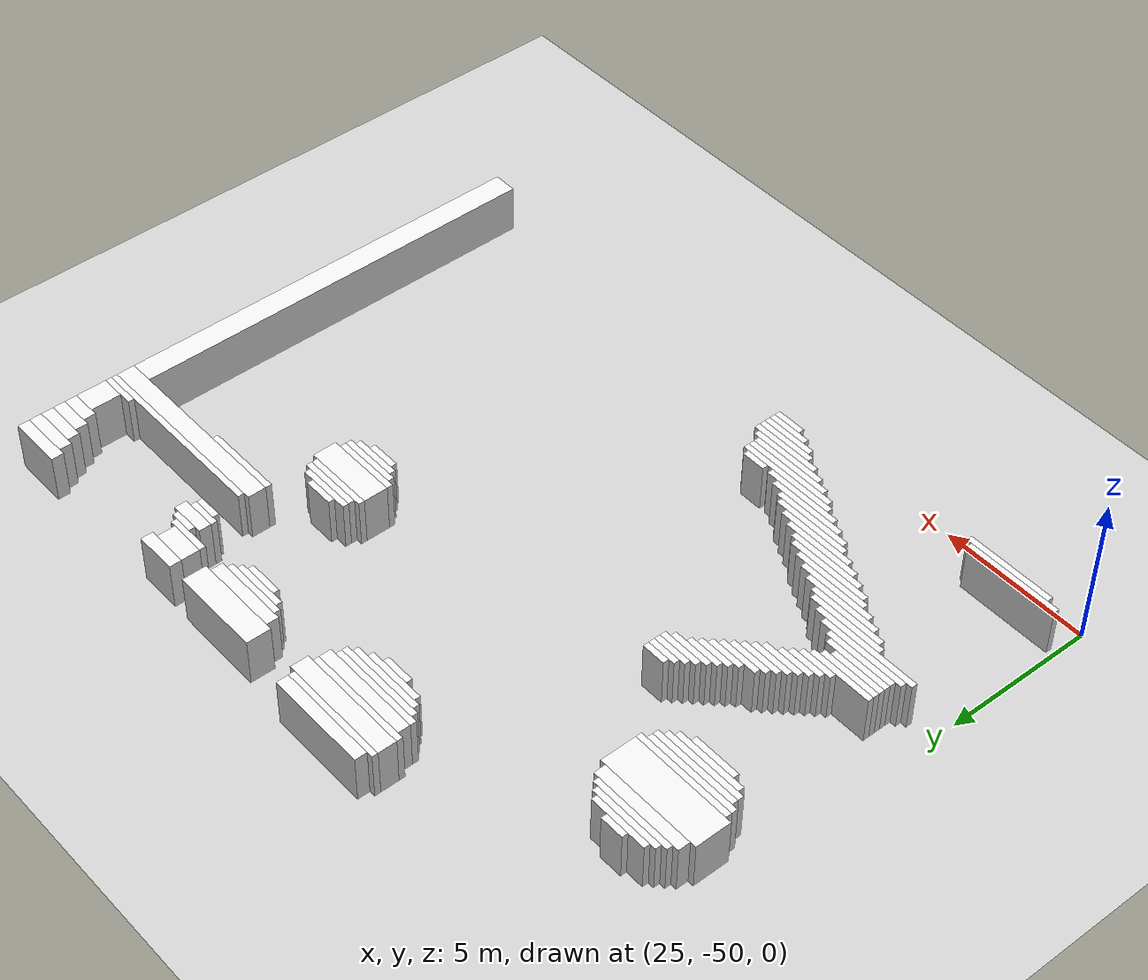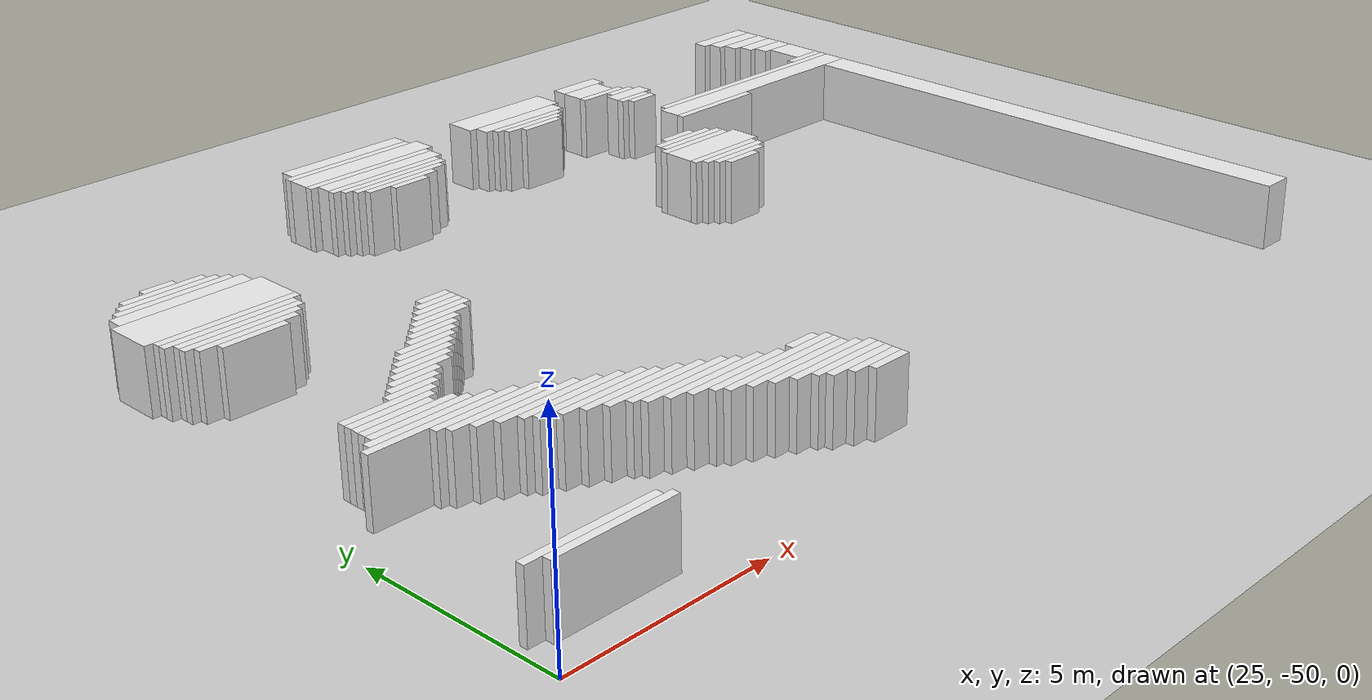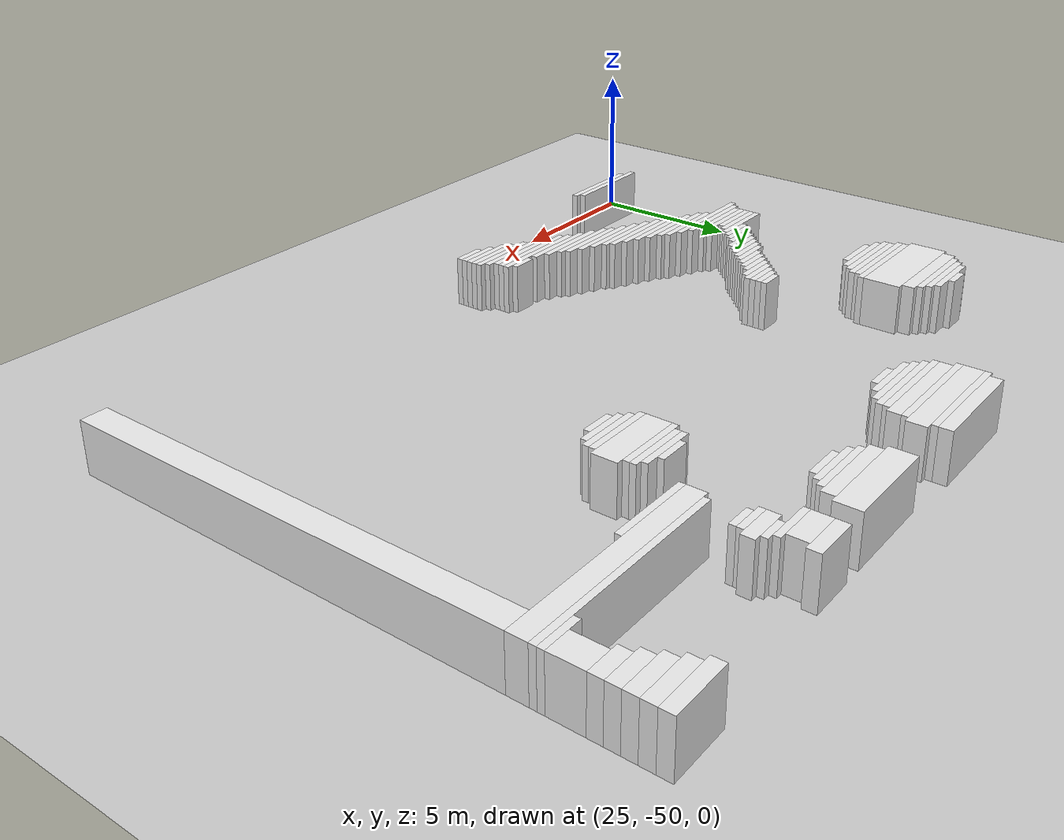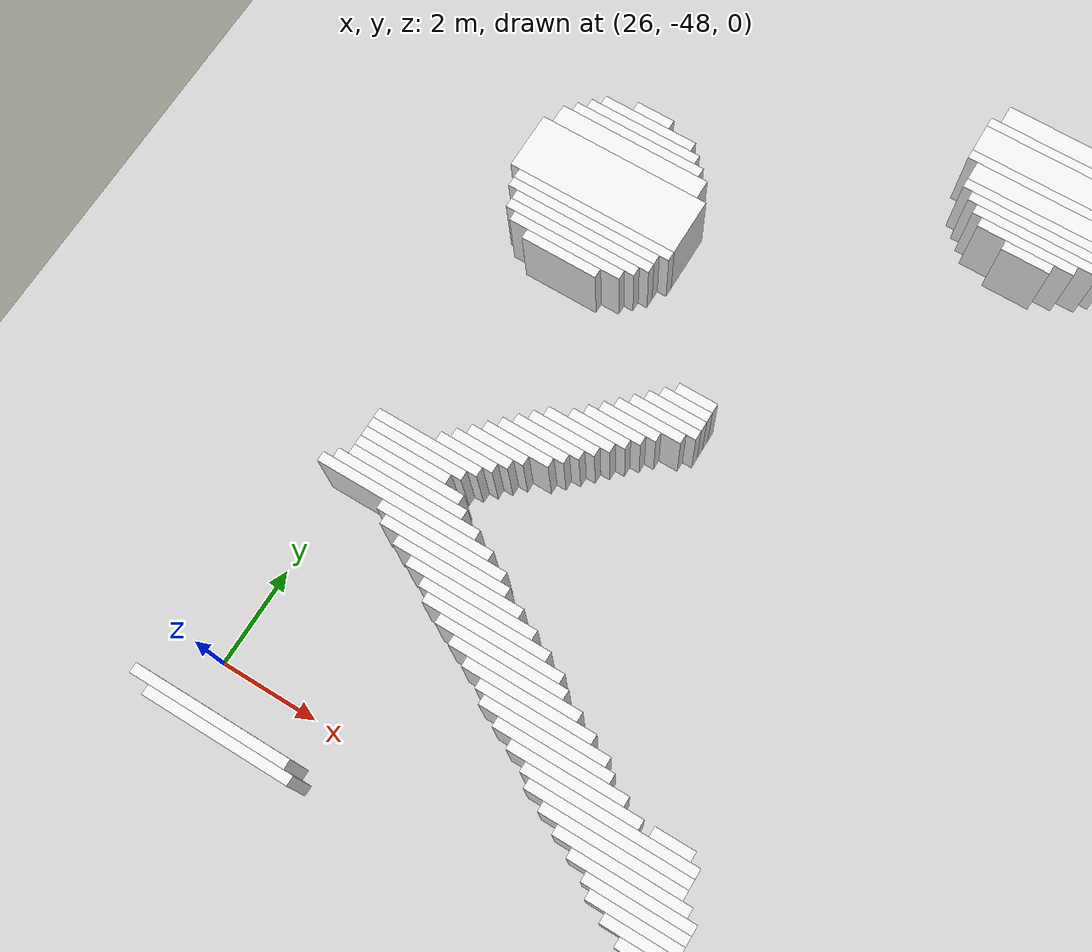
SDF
<sdf version="1.7">
 <world name="default">
  <model name="ground_plane">
   <static>1</static>
   <link name="link">
    <collision name="collision">
     <geometry><plane><normal>0 0 1</normal><size>120 120</size></plane></geometry>
    </collision>
    <visual name="visual">
     <geometry><plane><normal>0 0 1</normal><size>120 120</size></plane></geometry>
     <material>
      <script><uri>file://media/materials/scripts/gazebo.material</uri><name>Gazebo/Grey</name></script>
     </material>
    </visual>
   </link>
  </model>
  <model name="random_complex_03_model">
   <static>1</static>
   <link name="obs_2646">
    <pose>34.9000 -31.6000 0.8000 0 0 0</pose>
    <collision name="obs_2646_col"><geometry><box><size>3.4000 0.4000 1.6000</size></box></geometry></collision>
    <visual name="obs_2646_vis">
     <geometry><box><size>3.4000 0.4000 1.6000</size></box></geometry>
     <material>
      <script><uri>file://media/materials/scripts/gazebo.material</uri><name>Gazebo/White</name></script>
     </material>
    </visual>
   </link>
   <link name="obs_2647">
    <pose>48.3000 -31.6000 0.8000 0 0 0</pose>
    <collision name="obs_2647_col"><geometry><box><size>1.8000 0.4000 1.6000</size></box></geometry></collision>
    <visual name="obs_2647_vis">
     <geometry><box><size>1.8000 0.4000 1.6000</size></box></geometry>
     <material>
      <script><uri>file://media/materials/scripts/gazebo.material</uri><name>Gazebo/White</name></script>
     </material>
    </visual>
   </link>
   <link name="obs_2652">
    <pose>42.5000 -31.8000 0.8000 0 0 0</pose>
    <collision name="obs_2652_col"><geometry><box><size>1.4000 0.4000 1.6000</size></box></geometry></collision>
    <visual name="obs_2652_vis">
     <geometry><box><size>1.4000 0.4000 1.6000</size></box></geometry>
     <material>
      <script><uri>file://media/materials/scripts/gazebo.material</uri><name>Gazebo/White</name></script>
     </material>
    </visual>
   </link>
   <link name="obs_2658">
    <pose>34.8000 -31.9000 0.8000 0 0 0</pose>
    <collision name="obs_2658_col"><geometry><box><size>3.6000 0.2000 1.6000</size></box></geometry></collision>
    <visual name="obs_2658_vis">
     <geometry><box><size>3.6000 0.2000 1.6000</size></box></geometry>
     <material>
      <script><uri>file://media/materials/scripts/gazebo.material</uri><name>Gazebo/White</name></script>
     </material>
    </visual>
   </link>
   <link name="obs_2659">
    <pose>48.4000 -32.0000 0.8000 0 0 0</pose>
    <collision name="obs_2659_col"><geometry><box><size>1.6000 0.4000 1.6000</size></box></geometry></collision>
    <visual name="obs_2659_vis">
     <geometry><box><size>1.6000 0.4000 1.6000</size></box></geometry>
     <material>
      <script><uri>file://media/materials/scripts/gazebo.material</uri><name>Gazebo/White</name></script>
     </material>
    </visual>
   </link>
   <link name="obs_2665">
    <pose>39.7000 -32.0000 0.8000 0 0 0</pose>
    <collision name="obs_2665_col"><geometry><box><size>3.0000 0.8000 1.6000</size></box></geometry></collision>
    <visual name="obs_2665_vis">
     <geometry><box><size>3.0000 0.8000 1.6000</size></box></geometry>
     <material>
      <script><uri>file://media/materials/scripts/gazebo.material</uri><name>Gazebo/White</name></script>
     </material>
    </visual>
   </link>
   <link name="obs_2672">
    <pose>34.9000 -32.3000 0.8000 0 0 0</pose>
    <collision name="obs_2672_col"><geometry><box><size>3.8000 0.6000 1.6000</size></box></geometry></collision>
    <visual name="obs_2672_vis">
     <geometry><box><size>3.8000 0.6000 1.6000</size></box></geometry>
     <material>
      <script><uri>file://media/materials/scripts/gazebo.material</uri><name>Gazebo/White</name></script>
     </material>
    </visual>
   </link>
   <link name="obs_2673">
    <pose>42.4000 -32.3000 0.8000 0 0 0</pose>
    <collision name="obs_2673_col"><geometry><box><size>1.2000 0.6000 1.6000</size></box></geometry></collision>
    <visual name="obs_2673_vis">
     <geometry><box><size>1.2000 0.6000 1.6000</size></box></geometry>
     <material>
      <script><uri>file://media/materials/scripts/gazebo.material</uri><name>Gazebo/White</name></script>
     </material>
    </visual>
   </link>
   <link name="obs_2674">
    <pose>48.5000 -32.4000 0.8000 0 0 0</pose>
    <collision name="obs_2674_col"><geometry><box><size>1.4000 0.4000 1.6000</size></box></geometry></collision>
    <visual name="obs_2674_vis">
     <geometry><box><size>1.4000 0.4000 1.6000</size></box></geometry>
     <material>
      <script><uri>file://media/materials/scripts/gazebo.material</uri><name>Gazebo/White</name></script>
     </material>
    </visual>
   </link>
   <link name="obs_2681">
    <pose>39.7000 -32.6000 0.8000 0 0 0</pose>
    <collision name="obs_2681_col"><geometry><box><size>2.6000 0.4000 1.6000</size></box></geometry></collision>
    <visual name="obs_2681_vis">
     <geometry><box><size>2.6000 0.4000 1.6000</size></box></geometry>
     <material>
      <script><uri>file://media/materials/scripts/gazebo.material</uri><name>Gazebo/White</name></script>
     </material>
    </visual>
   </link>
   <link name="obs_2687">
    <pose>34.8000 -32.7000 0.8000 0 0 0</pose>
    <collision name="obs_2687_col"><geometry><box><size>3.6000 0.2000 1.6000</size></box></geometry></collision>
    <visual name="obs_2687_vis">
     <geometry><box><size>3.6000 0.2000 1.6000</size></box></geometry>
     <material>
      <script><uri>file://media/materials/scripts/gazebo.material</uri><name>Gazebo/White</name></script>
     </material>
    </visual>
   </link>
   <link name="obs_2688">
    <pose>42.5000 -32.7000 0.8000 0 0 0</pose>
    <collision name="obs_2688_col"><geometry><box><size>1.4000 0.2000 1.6000</size></box></geometry></collision>
    <visual name="obs_2688_vis">
     <geometry><box><size>1.4000 0.2000 1.6000</size></box></geometry>
     <material>
      <script><uri>file://media/materials/scripts/gazebo.material</uri><name>Gazebo/White</name></script>
     </material>
    </visual>
   </link>
   <link name="obs_2691">
    <pose>48.6000 -32.8000 0.8000 0 0 0</pose>
    <collision name="obs_2691_col"><geometry><box><size>1.2000 0.4000 1.6000</size></box></geometry></collision>
    <visual name="obs_2691_vis">
     <geometry><box><size>1.2000 0.4000 1.6000</size></box></geometry>
     <material>
      <script><uri>file://media/materials/scripts/gazebo.material</uri><name>Gazebo/White</name></script>
     </material>
    </visual>
   </link>
   <link name="obs_2696">
    <pose>39.7000 -32.9000 0.8000 0 0 0</pose>
    <collision name="obs_2696_col"><geometry><box><size>2.2000 0.2000 1.6000</size></box></geometry></collision>
    <visual name="obs_2696_vis">
     <geometry><box><size>2.2000 0.2000 1.6000</size></box></geometry>
     <material>
      <script><uri>file://media/materials/scripts/gazebo.material</uri><name>Gazebo/White</name></script>
     </material>
    </visual>
   </link>
   <link name="obs_2697">
    <pose>43.0000 -32.9000 0.8000 0 0 0</pose>
    <collision name="obs_2697_col"><geometry><box><size>0.8000 0.2000 1.6000</size></box></geometry></collision>
    <visual name="obs_2697_vis">
     <geometry><box><size>0.8000 0.2000 1.6000</size></box></geometry>
     <material>
      <script><uri>file://media/materials/scripts/gazebo.material</uri><name>Gazebo/White</name></script>
     </material>
    </visual>
   </link>
   <link name="obs_2699">
    <pose>34.9000 -33.0000 0.8000 0 0 0</pose>
    <collision name="obs_2699_col"><geometry><box><size>3.4000 0.4000 1.6000</size></box></geometry></collision>
    <visual name="obs_2699_vis">
     <geometry><box><size>3.4000 0.4000 1.6000</size></box></geometry>
     <material>
      <script><uri>file://media/materials/scripts/gazebo.material</uri><name>Gazebo/White</name></script>
     </material>
    </visual>
   </link>
   <link name="obs_2703">
    <pose>39.7000 -33.1000 0.8000 0 0 0</pose>
    <collision name="obs_2703_col"><geometry><box><size>1.8000 0.2000 1.6000</size></box></geometry></collision>
    <visual name="obs_2703_vis">
     <geometry><box><size>1.8000 0.2000 1.6000</size></box></geometry>
     <material>
      <script><uri>file://media/materials/scripts/gazebo.material</uri><name>Gazebo/White</name></script>
     </material>
    </visual>
   </link>
   <link name="obs_2705">
    <pose>43.0000 -33.2000 0.8000 0 0 0</pose>
    <collision name="obs_2705_col"><geometry><box><size>1.2000 0.4000 1.6000</size></box></geometry></collision>
    <visual name="obs_2705_vis">
     <geometry><box><size>1.2000 0.4000 1.6000</size></box></geometry>
     <material>
      <script><uri>file://media/materials/scripts/gazebo.material</uri><name>Gazebo/White</name></script>
     </material>
    </visual>
   </link>
   <link name="obs_2706">
    <pose>48.7000 -33.2000 0.8000 0 0 0</pose>
    <collision name="obs_2706_col"><geometry><box><size>1.0000 0.4000 1.6000</size></box></geometry></collision>
    <visual name="obs_2706_vis">
     <geometry><box><size>1.0000 0.4000 1.6000</size></box></geometry>
     <material>
      <script><uri>file://media/materials/scripts/gazebo.material</uri><name>Gazebo/White</name></script>
     </material>
    </visual>
   </link>
   <link name="obs_2710">
    <pose>34.8000 -33.3000 0.8000 0 0 0</pose>
    <collision name="obs_2710_col"><geometry><box><size>3.2000 0.2000 1.6000</size></box></geometry></collision>
    <visual name="obs_2710_vis">
     <geometry><box><size>3.2000 0.2000 1.6000</size></box></geometry>
     <material>
      <script><uri>file://media/materials/scripts/gazebo.material</uri><name>Gazebo/White</name></script>
     </material>
    </visual>
   </link>
   <link name="obs_2711">
    <pose>39.8000 -33.3000 0.8000 0 0 0</pose>
    <collision name="obs_2711_col"><geometry><box><size>1.2000 0.2000 1.6000</size></box></geometry></collision>
    <visual name="obs_2711_vis">
     <geometry><box><size>1.2000 0.2000 1.6000</size></box></geometry>
     <material>
      <script><uri>file://media/materials/scripts/gazebo.material</uri><name>Gazebo/White</name></script>
     </material>
    </visual>
   </link>
   <link name="obs_2716">
    <pose>34.9000 -33.5000 0.8000 0 0 0</pose>
    <collision name="obs_2716_col"><geometry><box><size>3.0000 0.2000 1.6000</size></box></geometry></collision>
    <visual name="obs_2716_vis">
     <geometry><box><size>3.0000 0.2000 1.6000</size></box></geometry>
     <material>
      <script><uri>file://media/materials/scripts/gazebo.material</uri><name>Gazebo/White</name></script>
     </material>
    </visual>
   </link>
   <link name="obs_2717">
    <pose>42.9000 -33.5000 0.8000 0 0 0</pose>
    <collision name="obs_2717_col"><geometry><box><size>1.0000 0.2000 1.6000</size></box></geometry></collision>
    <visual name="obs_2717_vis">
     <geometry><box><size>1.0000 0.2000 1.6000</size></box></geometry>
     <material>
      <script><uri>file://media/materials/scripts/gazebo.material</uri><name>Gazebo/White</name></script>
     </material>
    </visual>
   </link>
   <link name="obs_2724">
    <pose>34.9000 -33.7000 0.8000 0 0 0</pose>
    <collision name="obs_2724_col"><geometry><box><size>2.6000 0.2000 1.6000</size></box></geometry></collision>
    <visual name="obs_2724_vis">
     <geometry><box><size>2.6000 0.2000 1.6000</size></box></geometry>
     <material>
      <script><uri>file://media/materials/scripts/gazebo.material</uri><name>Gazebo/White</name></script>
     </material>
    </visual>
   </link>
   <link name="obs_2725">
    <pose>43.0000 -33.7000 0.8000 0 0 0</pose>
    <collision name="obs_2725_col"><geometry><box><size>0.8000 0.2000 1.6000</size></box></geometry></collision>
    <visual name="obs_2725_vis">
     <geometry><box><size>0.8000 0.2000 1.6000</size></box></geometry>
     <material>
      <script><uri>file://media/materials/scripts/gazebo.material</uri><name>Gazebo/White</name></script>
     </material>
    </visual>
   </link>
   <link name="obs_2731">
    <pose>34.8000 -33.9000 0.8000 0 0 0</pose>
    <collision name="obs_2731_col"><geometry><box><size>2.0000 0.2000 1.6000</size></box></geometry></collision>
    <visual name="obs_2731_vis">
     <geometry><box><size>2.0000 0.2000 1.6000</size></box></geometry>
     <material>
      <script><uri>file://media/materials/scripts/gazebo.material</uri><name>Gazebo/White</name></script>
     </material>
    </visual>
   </link>
   <link name="obs_2738">
    <pose>34.9000 -34.1000 0.8000 0 0 0</pose>
    <collision name="obs_2738_col"><geometry><box><size>1.0000 0.2000 1.6000</size></box></geometry></collision>
    <visual name="obs_2738_vis">
     <geometry><box><size>1.0000 0.2000 1.6000</size></box></geometry>
     <material>
      <script><uri>file://media/materials/scripts/gazebo.material</uri><name>Gazebo/White</name></script>
     </material>
    </visual>
   </link>
   <link name="obs_2739">
    <pose>48.8000 -33.9000 0.8000 0 0 0</pose>
    <collision name="obs_2739_col"><geometry><box><size>0.8000 1.0000 1.6000</size></box></geometry></collision>
    <visual name="obs_2739_vis">
     <geometry><box><size>0.8000 1.0000 1.6000</size></box></geometry>
     <material>
      <script><uri>file://media/materials/scripts/gazebo.material</uri><name>Gazebo/White</name></script>
     </material>
    </visual>
   </link>
   <link name="obs_2754">
    <pose>48.6000 -34.5000 0.8000 0 0 0</pose>
    <collision name="obs_2754_col"><geometry><box><size>1.2000 0.2000 1.6000</size></box></geometry></collision>
    <visual name="obs_2754_vis">
     <geometry><box><size>1.2000 0.2000 1.6000</size></box></geometry>
     <material>
      <script><uri>file://media/materials/scripts/gazebo.material</uri><name>Gazebo/White</name></script>
     </material>
    </visual>
   </link>
   <link name="obs_2763">
    <pose>46.0000 -34.7000 0.8000 0 0 0</pose>
    <collision name="obs_2763_col"><geometry><box><size>6.4000 0.2000 1.6000</size></box></geometry></collision>
    <visual name="obs_2763_vis">
     <geometry><box><size>6.4000 0.2000 1.6000</size></box></geometry>
     <material>
      <script><uri>file://media/materials/scripts/gazebo.material</uri><name>Gazebo/White</name></script>
     </material>
    </visual>
   </link>
   <link name="obs_2776">
    <pose>27.4000 -35.1000 0.8000 0 0 0</pose>
    <collision name="obs_2776_col"><geometry><box><size>0.8000 0.2000 1.6000</size></box></geometry></collision>
    <visual name="obs_2776_vis">
     <geometry><box><size>0.8000 0.2000 1.6000</size></box></geometry>
     <material>
      <script><uri>file://media/materials/scripts/gazebo.material</uri><name>Gazebo/White</name></script>
     </material>
    </visual>
   </link>
   <link name="obs_2779">
    <pose>45.9000 -35.1000 0.8000 0 0 0</pose>
    <collision name="obs_2779_col"><geometry><box><size>6.6000 0.6000 1.6000</size></box></geometry></collision>
    <visual name="obs_2779_vis">
     <geometry><box><size>6.6000 0.6000 1.6000</size></box></geometry>
     <material>
      <script><uri>file://media/materials/scripts/gazebo.material</uri><name>Gazebo/White</name></script>
     </material>
    </visual>
   </link>
   <link name="obs_2785">
    <pose>27.4000 -35.3000 0.8000 0 0 0</pose>
    <collision name="obs_2785_col"><geometry><box><size>2.0000 0.2000 1.6000</size></box></geometry></collision>
    <visual name="obs_2785_vis">
     <geometry><box><size>2.0000 0.2000 1.6000</size></box></geometry>
     <material>
      <script><uri>file://media/materials/scripts/gazebo.material</uri><name>Gazebo/White</name></script>
     </material>
    </visual>
   </link>
   <link name="obs_2791">
    <pose>27.4000 -35.5000 0.8000 0 0 0</pose>
    <collision name="obs_2791_col"><geometry><box><size>2.4000 0.2000 1.6000</size></box></geometry></collision>
    <visual name="obs_2791_vis">
     <geometry><box><size>2.4000 0.2000 1.6000</size></box></geometry>
     <material>
      <script><uri>file://media/materials/scripts/gazebo.material</uri><name>Gazebo/White</name></script>
     </material>
    </visual>
   </link>
   <link name="obs_2792">
    <pose>43.9000 -35.5000 0.8000 0 0 0</pose>
    <collision name="obs_2792_col"><geometry><box><size>2.6000 0.2000 1.6000</size></box></geometry></collision>
    <visual name="obs_2792_vis">
     <geometry><box><size>2.6000 0.2000 1.6000</size></box></geometry>
     <material>
      <script><uri>file://media/materials/scripts/gazebo.material</uri><name>Gazebo/White</name></script>
     </material>
    </visual>
   </link>
   <link name="obs_2800">
    <pose>27.4000 -35.7000 0.8000 0 0 0</pose>
    <collision name="obs_2800_col"><geometry><box><size>2.8000 0.2000 1.6000</size></box></geometry></collision>
    <visual name="obs_2800_vis">
     <geometry><box><size>2.8000 0.2000 1.6000</size></box></geometry>
     <material>
      <script><uri>file://media/materials/scripts/gazebo.material</uri><name>Gazebo/White</name></script>
     </material>
    </visual>
   </link>
   <link name="obs_2809">
    <pose>27.4000 -36.0000 0.8000 0 0 0</pose>
    <collision name="obs_2809_col"><geometry><box><size>3.2000 0.4000 1.6000</size></box></geometry></collision>
    <visual name="obs_2809_vis">
     <geometry><box><size>3.2000 0.4000 1.6000</size></box></geometry>
     <material>
      <script><uri>file://media/materials/scripts/gazebo.material</uri><name>Gazebo/White</name></script>
     </material>
    </visual>
   </link>
   <link name="obs_2829">
    <pose>41.5000 -36.5000 0.8000 0 0 0</pose>
    <collision name="obs_2829_col"><geometry><box><size>1.0000 0.2000 1.6000</size></box></geometry></collision>
    <visual name="obs_2829_vis">
     <geometry><box><size>1.0000 0.2000 1.6000</size></box></geometry>
     <material>
      <script><uri>file://media/materials/scripts/gazebo.material</uri><name>Gazebo/White</name></script>
     </material>
    </visual>
   </link>
   <link name="obs_2836">
    <pose>41.5000 -36.7000 0.8000 0 0 0</pose>
    <collision name="obs_2836_col"><geometry><box><size>1.8000 0.2000 1.6000</size></box></geometry></collision>
    <visual name="obs_2836_vis">
     <geometry><box><size>1.8000 0.2000 1.6000</size></box></geometry>
     <material>
      <script><uri>file://media/materials/scripts/gazebo.material</uri><name>Gazebo/White</name></script>
     </material>
    </visual>
   </link>
   <link name="obs_2841">
    <pose>41.6000 -36.9000 0.8000 0 0 0</pose>
    <collision name="obs_2841_col"><geometry><box><size>2.0000 0.2000 1.6000</size></box></geometry></collision>
    <visual name="obs_2841_vis">
     <geometry><box><size>2.0000 0.2000 1.6000</size></box></geometry>
     <material>
      <script><uri>file://media/materials/scripts/gazebo.material</uri><name>Gazebo/White</name></script>
     </material>
    </visual>
   </link>
   <link name="obs_2846">
    <pose>41.5000 -37.1000 0.8000 0 0 0</pose>
    <collision name="obs_2846_col"><geometry><box><size>2.2000 0.2000 1.6000</size></box></geometry></collision>
    <visual name="obs_2846_vis">
     <geometry><box><size>2.2000 0.2000 1.6000</size></box></geometry>
     <material>
      <script><uri>file://media/materials/scripts/gazebo.material</uri><name>Gazebo/White</name></script>
     </material>
    </visual>
   </link>
   <link name="obs_2847">
    <pose>27.4000 -36.8000 0.8000 0 0 0</pose>
    <collision name="obs_2847_col"><geometry><box><size>3.6000 1.2000 1.6000</size></box></geometry></collision>
    <visual name="obs_2847_vis">
     <geometry><box><size>3.6000 1.2000 1.6000</size></box></geometry>
     <material>
      <script><uri>file://media/materials/scripts/gazebo.material</uri><name>Gazebo/White</name></script>
     </material>
    </visual>
   </link>
   <link name="obs_2858">
    <pose>27.5000 -37.5000 0.8000 0 0 0</pose>
    <collision name="obs_2858_col"><geometry><box><size>3.4000 0.2000 1.6000</size></box></geometry></collision>
    <visual name="obs_2858_vis">
     <geometry><box><size>3.4000 0.2000 1.6000</size></box></geometry>
     <material>
      <script><uri>file://media/materials/scripts/gazebo.material</uri><name>Gazebo/White</name></script>
     </material>
    </visual>
   </link>
   <link name="obs_2864">
    <pose>27.4000 -37.7000 0.8000 0 0 0</pose>
    <collision name="obs_2864_col"><geometry><box><size>3.2000 0.2000 1.6000</size></box></geometry></collision>
    <visual name="obs_2864_vis">
     <geometry><box><size>3.2000 0.2000 1.6000</size></box></geometry>
     <material>
      <script><uri>file://media/materials/scripts/gazebo.material</uri><name>Gazebo/White</name></script>
     </material>
    </visual>
   </link>
   <link name="obs_2865">
    <pose>41.6000 -37.6000 0.8000 0 0 0</pose>
    <collision name="obs_2865_col"><geometry><box><size>2.4000 0.8000 1.6000</size></box></geometry></collision>
    <visual name="obs_2865_vis">
     <geometry><box><size>2.4000 0.8000 1.6000</size></box></geometry>
     <material>
      <script><uri>file://media/materials/scripts/gazebo.material</uri><name>Gazebo/White</name></script>
     </material>
    </visual>
   </link>
   <link name="obs_2869">
    <pose>27.5000 -37.9000 0.8000 0 0 0</pose>
    <collision name="obs_2869_col"><geometry><box><size>3.0000 0.2000 1.6000</size></box></geometry></collision>
    <visual name="obs_2869_vis">
     <geometry><box><size>3.0000 0.2000 1.6000</size></box></geometry>
     <material>
      <script><uri>file://media/materials/scripts/gazebo.material</uri><name>Gazebo/White</name></script>
     </material>
    </visual>
   </link>
   <link name="obs_2875">
    <pose>27.4000 -38.1000 0.8000 0 0 0</pose>
    <collision name="obs_2875_col"><geometry><box><size>2.8000 0.2000 1.6000</size></box></geometry></collision>
    <visual name="obs_2875_vis">
     <geometry><box><size>2.8000 0.2000 1.6000</size></box></geometry>
     <material>
      <script><uri>file://media/materials/scripts/gazebo.material</uri><name>Gazebo/White</name></script>
     </material>
    </visual>
   </link>
   <link name="obs_2876">
    <pose>41.5000 -38.1000 0.8000 0 0 0</pose>
    <collision name="obs_2876_col"><geometry><box><size>2.2000 0.2000 1.6000</size></box></geometry></collision>
    <visual name="obs_2876_vis">
     <geometry><box><size>2.2000 0.2000 1.6000</size></box></geometry>
     <material>
      <script><uri>file://media/materials/scripts/gazebo.material</uri><name>Gazebo/White</name></script>
     </material>
    </visual>
   </link>
   <link name="obs_2882">
    <pose>27.4000 -38.3000 0.8000 0 0 0</pose>
    <collision name="obs_2882_col"><geometry><box><size>2.4000 0.2000 1.6000</size></box></geometry></collision>
    <visual name="obs_2882_vis">
     <geometry><box><size>2.4000 0.2000 1.6000</size></box></geometry>
     <material>
      <script><uri>file://media/materials/scripts/gazebo.material</uri><name>Gazebo/White</name></script>
     </material>
    </visual>
   </link>
   <link name="obs_2883">
    <pose>41.6000 -38.3000 0.8000 0 0 0</pose>
    <collision name="obs_2883_col"><geometry><box><size>2.0000 0.2000 1.6000</size></box></geometry></collision>
    <visual name="obs_2883_vis">
     <geometry><box><size>2.0000 0.2000 1.6000</size></box></geometry>
     <material>
      <script><uri>file://media/materials/scripts/gazebo.material</uri><name>Gazebo/White</name></script>
     </material>
    </visual>
   </link>
   <link name="obs_2888">
    <pose>27.4000 -38.5000 0.8000 0 0 0</pose>
    <collision name="obs_2888_col"><geometry><box><size>1.6000 0.2000 1.6000</size></box></geometry></collision>
    <visual name="obs_2888_vis">
     <geometry><box><size>1.6000 0.2000 1.6000</size></box></geometry>
     <material>
      <script><uri>file://media/materials/scripts/gazebo.material</uri><name>Gazebo/White</name></script>
     </material>
    </visual>
   </link>
   <link name="obs_2889">
    <pose>41.6000 -38.5000 0.8000 0 0 0</pose>
    <collision name="obs_2889_col"><geometry><box><size>1.6000 0.2000 1.6000</size></box></geometry></collision>
    <visual name="obs_2889_vis">
     <geometry><box><size>1.6000 0.2000 1.6000</size></box></geometry>
     <material>
      <script><uri>file://media/materials/scripts/gazebo.material</uri><name>Gazebo/White</name></script>
     </material>
    </visual>
   </link>
   <link name="obs_2894">
    <pose>41.5000 -38.7000 0.8000 0 0 0</pose>
    <collision name="obs_2894_col"><geometry><box><size>1.0000 0.2000 1.6000</size></box></geometry></collision>
    <visual name="obs_2894_vis">
     <geometry><box><size>1.0000 0.2000 1.6000</size></box></geometry>
     <material>
      <script><uri>file://media/materials/scripts/gazebo.material</uri><name>Gazebo/White</name></script>
     </material>
    </visual>
   </link>
   <link name="obs_2918">
    <pose>31.0000 -39.7000 0.8000 0 0 0</pose>
    <collision name="obs_2918_col"><geometry><box><size>0.8000 0.2000 1.6000</size></box></geometry></collision>
    <visual name="obs_2918_vis">
     <geometry><box><size>0.8000 0.2000 1.6000</size></box></geometry>
     <material>
      <script><uri>file://media/materials/scripts/gazebo.material</uri><name>Gazebo/White</name></script>
     </material>
    </visual>
   </link>
   <link name="obs_2924">
    <pose>30.9000 -39.9000 0.8000 0 0 0</pose>
    <collision name="obs_2924_col"><geometry><box><size>1.0000 0.2000 1.6000</size></box></geometry></collision>
    <visual name="obs_2924_vis">
     <geometry><box><size>1.0000 0.2000 1.6000</size></box></geometry>
     <material>
      <script><uri>file://media/materials/scripts/gazebo.material</uri><name>Gazebo/White</name></script>
     </material>
    </visual>
   </link>
   <link name="obs_2930">
    <pose>30.8000 -40.1000 0.8000 0 0 0</pose>
    <collision name="obs_2930_col"><geometry><box><size>1.2000 0.2000 1.6000</size></box></geometry></collision>
    <visual name="obs_2930_vis">
     <geometry><box><size>1.2000 0.2000 1.6000</size></box></geometry>
     <material>
      <script><uri>file://media/materials/scripts/gazebo.material</uri><name>Gazebo/White</name></script>
     </material>
    </visual>
   </link>
   <link name="obs_2937">
    <pose>30.7000 -40.3000 0.8000 0 0 0</pose>
    <collision name="obs_2937_col"><geometry><box><size>1.4000 0.2000 1.6000</size></box></geometry></collision>
    <visual name="obs_2937_vis">
     <geometry><box><size>1.4000 0.2000 1.6000</size></box></geometry>
     <material>
      <script><uri>file://media/materials/scripts/gazebo.material</uri><name>Gazebo/White</name></script>
     </material>
    </visual>
   </link>
   <link name="obs_2942">
    <pose>30.5000 -40.5000 0.8000 0 0 0</pose>
    <collision name="obs_2942_col"><geometry><box><size>1.4000 0.2000 1.6000</size></box></geometry></collision>
    <visual name="obs_2942_vis">
     <geometry><box><size>1.4000 0.2000 1.6000</size></box></geometry>
     <material>
      <script><uri>file://media/materials/scripts/gazebo.material</uri><name>Gazebo/White</name></script>
     </material>
    </visual>
   </link>
   <link name="obs_2948">
    <pose>30.2000 -40.7000 0.8000 0 0 0</pose>
    <collision name="obs_2948_col"><geometry><box><size>1.2000 0.2000 1.6000</size></box></geometry></collision>
    <visual name="obs_2948_vis">
     <geometry><box><size>1.2000 0.2000 1.6000</size></box></geometry>
     <material>
      <script><uri>file://media/materials/scripts/gazebo.material</uri><name>Gazebo/White</name></script>
     </material>
    </visual>
   </link>
   <link name="obs_2954">
    <pose>30.0000 -40.9000 0.8000 0 0 0</pose>
    <collision name="obs_2954_col"><geometry><box><size>1.2000 0.2000 1.6000</size></box></geometry></collision>
    <visual name="obs_2954_vis">
     <geometry><box><size>1.2000 0.2000 1.6000</size></box></geometry>
     <material>
      <script><uri>file://media/materials/scripts/gazebo.material</uri><name>Gazebo/White</name></script>
     </material>
    </visual>
   </link>
   <link name="obs_2958">
    <pose>29.8000 -41.1000 0.8000 0 0 0</pose>
    <collision name="obs_2958_col"><geometry><box><size>1.2000 0.2000 1.6000</size></box></geometry></collision>
    <visual name="obs_2958_vis">
     <geometry><box><size>1.2000 0.2000 1.6000</size></box></geometry>
     <material>
      <script><uri>file://media/materials/scripts/gazebo.material</uri><name>Gazebo/White</name></script>
     </material>
    </visual>
   </link>
   <link name="obs_2962">
    <pose>29.5000 -41.3000 0.8000 0 0 0</pose>
    <collision name="obs_2962_col"><geometry><box><size>1.4000 0.2000 1.6000</size></box></geometry></collision>
    <visual name="obs_2962_vis">
     <geometry><box><size>1.4000 0.2000 1.6000</size></box></geometry>
     <material>
      <script><uri>file://media/materials/scripts/gazebo.material</uri><name>Gazebo/White</name></script>
     </material>
    </visual>
   </link>
   <link name="obs_2965">
    <pose>29.3000 -41.5000 0.8000 0 0 0</pose>
    <collision name="obs_2965_col"><geometry><box><size>1.4000 0.2000 1.6000</size></box></geometry></collision>
    <visual name="obs_2965_vis">
     <geometry><box><size>1.4000 0.2000 1.6000</size></box></geometry>
     <material>
      <script><uri>file://media/materials/scripts/gazebo.material</uri><name>Gazebo/White</name></script>
     </material>
    </visual>
   </link>
   <link name="obs_2968">
    <pose>29.1000 -41.7000 0.8000 0 0 0</pose>
    <collision name="obs_2968_col"><geometry><box><size>1.4000 0.2000 1.6000</size></box></geometry></collision>
    <visual name="obs_2968_vis">
     <geometry><box><size>1.4000 0.2000 1.6000</size></box></geometry>
     <material>
      <script><uri>file://media/materials/scripts/gazebo.material</uri><name>Gazebo/White</name></script>
     </material>
    </visual>
   </link>
   <link name="obs_2971">
    <pose>28.9000 -41.9000 0.8000 0 0 0</pose>
    <collision name="obs_2971_col"><geometry><box><size>1.4000 0.2000 1.6000</size></box></geometry></collision>
    <visual name="obs_2971_vis">
     <geometry><box><size>1.4000 0.2000 1.6000</size></box></geometry>
     <material>
      <script><uri>file://media/materials/scripts/gazebo.material</uri><name>Gazebo/White</name></script>
     </material>
    </visual>
   </link>
   <link name="obs_2976">
    <pose>28.7000 -42.1000 0.8000 0 0 0</pose>
    <collision name="obs_2976_col"><geometry><box><size>1.4000 0.2000 1.6000</size></box></geometry></collision>
    <visual name="obs_2976_vis">
     <geometry><box><size>1.4000 0.2000 1.6000</size></box></geometry>
     <material>
      <script><uri>file://media/materials/scripts/gazebo.material</uri><name>Gazebo/White</name></script>
     </material>
    </visual>
   </link>
   <link name="obs_2981">
    <pose>28.4000 -42.3000 0.8000 0 0 0</pose>
    <collision name="obs_2981_col"><geometry><box><size>1.2000 0.2000 1.6000</size></box></geometry></collision>
    <visual name="obs_2981_vis">
     <geometry><box><size>1.2000 0.2000 1.6000</size></box></geometry>
     <material>
      <script><uri>file://media/materials/scripts/gazebo.material</uri><name>Gazebo/White</name></script>
     </material>
    </visual>
   </link>
   <link name="obs_2986">
    <pose>28.2000 -42.5000 0.8000 0 0 0</pose>
    <collision name="obs_2986_col"><geometry><box><size>1.2000 0.2000 1.6000</size></box></geometry></collision>
    <visual name="obs_2986_vis">
     <geometry><box><size>1.2000 0.2000 1.6000</size></box></geometry>
     <material>
      <script><uri>file://media/materials/scripts/gazebo.material</uri><name>Gazebo/White</name></script>
     </material>
    </visual>
   </link>
   <link name="obs_2992">
    <pose>28.0000 -42.7000 0.8000 0 0 0</pose>
    <collision name="obs_2992_col"><geometry><box><size>1.2000 0.2000 1.6000</size></box></geometry></collision>
    <visual name="obs_2992_vis">
     <geometry><box><size>1.2000 0.2000 1.6000</size></box></geometry>
     <material>
      <script><uri>file://media/materials/scripts/gazebo.material</uri><name>Gazebo/White</name></script>
     </material>
    </visual>
   </link>
   <link name="obs_2998">
    <pose>27.3000 -42.9000 0.8000 0 0 0</pose>
    <collision name="obs_2998_col"><geometry><box><size>2.2000 0.2000 1.6000</size></box></geometry></collision>
    <visual name="obs_2998_vis">
     <geometry><box><size>2.2000 0.2000 1.6000</size></box></geometry>
     <material>
      <script><uri>file://media/materials/scripts/gazebo.material</uri><name>Gazebo/White</name></script>
     </material>
    </visual>
   </link>
   <link name="obs_3003">
    <pose>27.2000 -43.1000 0.8000 0 0 0</pose>
    <collision name="obs_3003_col"><geometry><box><size>2.0000 0.2000 1.6000</size></box></geometry></collision>
    <visual name="obs_3003_vis">
     <geometry><box><size>2.0000 0.2000 1.6000</size></box></geometry>
     <material>
      <script><uri>file://media/materials/scripts/gazebo.material</uri><name>Gazebo/White</name></script>
     </material>
    </visual>
   </link>
   <link name="obs_3007">
    <pose>27.1000 -43.3000 0.8000 0 0 0</pose>
    <collision name="obs_3007_col"><geometry><box><size>1.8000 0.2000 1.6000</size></box></geometry></collision>
    <visual name="obs_3007_vis">
     <geometry><box><size>1.8000 0.2000 1.6000</size></box></geometry>
     <material>
      <script><uri>file://media/materials/scripts/gazebo.material</uri><name>Gazebo/White</name></script>
     </material>
    </visual>
   </link>
   <link name="obs_3011">
    <pose>27.3000 -43.5000 0.8000 0 0 0</pose>
    <collision name="obs_3011_col"><geometry><box><size>2.2000 0.2000 1.6000</size></box></geometry></collision>
    <visual name="obs_3011_vis">
     <geometry><box><size>2.2000 0.2000 1.6000</size></box></geometry>
     <material>
      <script><uri>file://media/materials/scripts/gazebo.material</uri><name>Gazebo/White</name></script>
     </material>
    </visual>
   </link>
   <link name="obs_3017">
    <pose>27.4000 -43.7000 0.8000 0 0 0</pose>
    <collision name="obs_3017_col"><geometry><box><size>2.4000 0.2000 1.6000</size></box></geometry></collision>
    <visual name="obs_3017_vis">
     <geometry><box><size>2.4000 0.2000 1.6000</size></box></geometry>
     <material>
      <script><uri>file://media/materials/scripts/gazebo.material</uri><name>Gazebo/White</name></script>
     </material>
    </visual>
   </link>
   <link name="obs_3022">
    <pose>27.5000 -43.9000 0.8000 0 0 0</pose>
    <collision name="obs_3022_col"><geometry><box><size>3.0000 0.2000 1.6000</size></box></geometry></collision>
    <visual name="obs_3022_vis">
     <geometry><box><size>3.0000 0.2000 1.6000</size></box></geometry>
     <material>
      <script><uri>file://media/materials/scripts/gazebo.material</uri><name>Gazebo/White</name></script>
     </material>
    </visual>
   </link>
   <link name="obs_3026">
    <pose>27.6000 -44.1000 0.8000 0 0 0</pose>
    <collision name="obs_3026_col"><geometry><box><size>3.6000 0.2000 1.6000</size></box></geometry></collision>
    <visual name="obs_3026_vis">
     <geometry><box><size>3.6000 0.2000 1.6000</size></box></geometry>
     <material>
      <script><uri>file://media/materials/scripts/gazebo.material</uri><name>Gazebo/White</name></script>
     </material>
    </visual>
   </link>
   <link name="obs_3033">
    <pose>28.5000 -44.3000 0.8000 0 0 0</pose>
    <collision name="obs_3033_col"><geometry><box><size>2.6000 0.2000 1.6000</size></box></geometry></collision>
    <visual name="obs_3033_vis">
     <geometry><box><size>2.6000 0.2000 1.6000</size></box></geometry>
     <material>
      <script><uri>file://media/materials/scripts/gazebo.material</uri><name>Gazebo/White</name></script>
     </material>
    </visual>
   </link>
   <link name="obs_3039">
    <pose>28.7000 -44.5000 0.8000 0 0 0</pose>
    <collision name="obs_3039_col"><geometry><box><size>2.6000 0.2000 1.6000</size></box></geometry></collision>
    <visual name="obs_3039_vis">
     <geometry><box><size>2.6000 0.2000 1.6000</size></box></geometry>
     <material>
      <script><uri>file://media/materials/scripts/gazebo.material</uri><name>Gazebo/White</name></script>
     </material>
    </visual>
   </link>
   <link name="obs_3045">
    <pose>29.1000 -44.7000 0.8000 0 0 0</pose>
    <collision name="obs_3045_col"><geometry><box><size>2.6000 0.2000 1.6000</size></box></geometry></collision>
    <visual name="obs_3045_vis">
     <geometry><box><size>2.6000 0.2000 1.6000</size></box></geometry>
     <material>
      <script><uri>file://media/materials/scripts/gazebo.material</uri><name>Gazebo/White</name></script>
     </material>
    </visual>
   </link>
   <link name="obs_3050">
    <pose>29.5000 -44.9000 0.8000 0 0 0</pose>
    <collision name="obs_3050_col"><geometry><box><size>2.6000 0.2000 1.6000</size></box></geometry></collision>
    <visual name="obs_3050_vis">
     <geometry><box><size>2.6000 0.2000 1.6000</size></box></geometry>
     <material>
      <script><uri>file://media/materials/scripts/gazebo.material</uri><name>Gazebo/White</name></script>
     </material>
    </visual>
   </link>
   <link name="obs_3054">
    <pose>29.9000 -45.1000 0.8000 0 0 0</pose>
    <collision name="obs_3054_col"><geometry><box><size>2.6000 0.2000 1.6000</size></box></geometry></collision>
    <visual name="obs_3054_vis">
     <geometry><box><size>2.6000 0.2000 1.6000</size></box></geometry>
     <material>
      <script><uri>file://media/materials/scripts/gazebo.material</uri><name>Gazebo/White</name></script>
     </material>
    </visual>
   </link>
   <link name="obs_3060">
    <pose>30.2000 -45.3000 0.8000 0 0 0</pose>
    <collision name="obs_3060_col"><geometry><box><size>2.8000 0.2000 1.6000</size></box></geometry></collision>
    <visual name="obs_3060_vis">
     <geometry><box><size>2.8000 0.2000 1.6000</size></box></geometry>
     <material>
      <script><uri>file://media/materials/scripts/gazebo.material</uri><name>Gazebo/White</name></script>
     </material>
    </visual>
   </link>
   <link name="obs_3065">
    <pose>30.5000 -45.5000 0.8000 0 0 0</pose>
    <collision name="obs_3065_col"><geometry><box><size>2.6000 0.2000 1.6000</size></box></geometry></collision>
    <visual name="obs_3065_vis">
     <geometry><box><size>2.6000 0.2000 1.6000</size></box></geometry>
     <material>
      <script><uri>file://media/materials/scripts/gazebo.material</uri><name>Gazebo/White</name></script>
     </material>
    </visual>
   </link>
   <link name="obs_3073">
    <pose>30.9000 -45.7000 0.8000 0 0 0</pose>
    <collision name="obs_3073_col"><geometry><box><size>2.6000 0.2000 1.6000</size></box></geometry></collision>
    <visual name="obs_3073_vis">
     <geometry><box><size>2.6000 0.2000 1.6000</size></box></geometry>
     <material>
      <script><uri>file://media/materials/scripts/gazebo.material</uri><name>Gazebo/White</name></script>
     </material>
    </visual>
   </link>
   <link name="obs_3079">
    <pose>31.3000 -45.9000 0.8000 0 0 0</pose>
    <collision name="obs_3079_col"><geometry><box><size>2.6000 0.2000 1.6000</size></box></geometry></collision>
    <visual name="obs_3079_vis">
     <geometry><box><size>2.6000 0.2000 1.6000</size></box></geometry>
     <material>
      <script><uri>file://media/materials/scripts/gazebo.material</uri><name>Gazebo/White</name></script>
     </material>
    </visual>
   </link>
   <link name="obs_3086">
    <pose>31.7000 -46.1000 0.8000 0 0 0</pose>
    <collision name="obs_3086_col"><geometry><box><size>2.6000 0.2000 1.6000</size></box></geometry></collision>
    <visual name="obs_3086_vis">
     <geometry><box><size>2.6000 0.2000 1.6000</size></box></geometry>
     <material>
      <script><uri>file://media/materials/scripts/gazebo.material</uri><name>Gazebo/White</name></script>
     </material>
    </visual>
   </link>
   <link name="obs_3092">
    <pose>31.9000 -46.3000 0.8000 0 0 0</pose>
    <collision name="obs_3092_col"><geometry><box><size>2.6000 0.2000 1.6000</size></box></geometry></collision>
    <visual name="obs_3092_vis">
     <geometry><box><size>2.6000 0.2000 1.6000</size></box></geometry>
     <material>
      <script><uri>file://media/materials/scripts/gazebo.material</uri><name>Gazebo/White</name></script>
     </material>
    </visual>
   </link>
   <link name="obs_3099">
    <pose>32.3000 -46.5000 0.8000 0 0 0</pose>
    <collision name="obs_3099_col"><geometry><box><size>2.6000 0.2000 1.6000</size></box></geometry></collision>
    <visual name="obs_3099_vis">
     <geometry><box><size>2.6000 0.2000 1.6000</size></box></geometry>
     <material>
      <script><uri>file://media/materials/scripts/gazebo.material</uri><name>Gazebo/White</name></script>
     </material>
    </visual>
   </link>
   <link name="obs_3105">
    <pose>32.7000 -46.7000 0.8000 0 0 0</pose>
    <collision name="obs_3105_col"><geometry><box><size>2.6000 0.2000 1.6000</size></box></geometry></collision>
    <visual name="obs_3105_vis">
     <geometry><box><size>2.6000 0.2000 1.6000</size></box></geometry>
     <material>
      <script><uri>file://media/materials/scripts/gazebo.material</uri><name>Gazebo/White</name></script>
     </material>
    </visual>
   </link>
   <link name="obs_3106">
    <pose>34.6000 -46.7000 0.8000 0 0 0</pose>
    <collision name="obs_3106_col"><geometry><box><size>0.8000 0.2000 1.6000</size></box></geometry></collision>
    <visual name="obs_3106_vis">
     <geometry><box><size>0.8000 0.2000 1.6000</size></box></geometry>
     <material>
      <script><uri>file://media/materials/scripts/gazebo.material</uri><name>Gazebo/White</name></script>
     </material>
    </visual>
   </link>
   <link name="obs_3113">
    <pose>33.5000 -46.9000 0.8000 0 0 0</pose>
    <collision name="obs_3113_col"><geometry><box><size>3.4000 0.2000 1.6000</size></box></geometry></collision>
    <visual name="obs_3113_vis">
     <geometry><box><size>3.4000 0.2000 1.6000</size></box></geometry>
     <material>
      <script><uri>file://media/materials/scripts/gazebo.material</uri><name>Gazebo/White</name></script>
     </material>
    </visual>
   </link>
   <link name="obs_3120">
    <pose>33.6000 -47.1000 0.8000 0 0 0</pose>
    <collision name="obs_3120_col"><geometry><box><size>3.2000 0.2000 1.6000</size></box></geometry></collision>
    <visual name="obs_3120_vis">
     <geometry><box><size>3.2000 0.2000 1.6000</size></box></geometry>
     <material>
      <script><uri>file://media/materials/scripts/gazebo.material</uri><name>Gazebo/White</name></script>
     </material>
    </visual>
   </link>
   <link name="obs_3129">
    <pose>33.8000 -47.3000 0.8000 0 0 0</pose>
    <collision name="obs_3129_col"><geometry><box><size>2.8000 0.2000 1.6000</size></box></geometry></collision>
    <visual name="obs_3129_vis">
     <geometry><box><size>2.8000 0.2000 1.6000</size></box></geometry>
     <material>
      <script><uri>file://media/materials/scripts/gazebo.material</uri><name>Gazebo/White</name></script>
     </material>
    </visual>
   </link>
   <link name="obs_3137">
    <pose>34.1000 -47.5000 0.8000 0 0 0</pose>
    <collision name="obs_3137_col"><geometry><box><size>2.6000 0.2000 1.6000</size></box></geometry></collision>
    <visual name="obs_3137_vis">
     <geometry><box><size>2.6000 0.2000 1.6000</size></box></geometry>
     <material>
      <script><uri>file://media/materials/scripts/gazebo.material</uri><name>Gazebo/White</name></script>
     </material>
    </visual>
   </link>
   <link name="obs_3144">
    <pose>34.4000 -47.7000 0.8000 0 0 0</pose>
    <collision name="obs_3144_col"><geometry><box><size>2.4000 0.2000 1.6000</size></box></geometry></collision>
    <visual name="obs_3144_vis">
     <geometry><box><size>2.4000 0.2000 1.6000</size></box></geometry>
     <material>
      <script><uri>file://media/materials/scripts/gazebo.material</uri><name>Gazebo/White</name></script>
     </material>
    </visual>
   </link>
   <link name="obs_3150">
    <pose>34.6000 -47.9000 0.8000 0 0 0</pose>
    <collision name="obs_3150_col"><geometry><box><size>2.0000 0.2000 1.6000</size></box></geometry></collision>
    <visual name="obs_3150_vis">
     <geometry><box><size>2.0000 0.2000 1.6000</size></box></geometry>
     <material>
      <script><uri>file://media/materials/scripts/gazebo.material</uri><name>Gazebo/White</name></script>
     </material>
    </visual>
   </link>
   <link name="obs_3157">
    <pose>34.7000 -48.1000 0.8000 0 0 0</pose>
    <collision name="obs_3157_col"><geometry><box><size>1.8000 0.2000 1.6000</size></box></geometry></collision>
    <visual name="obs_3157_vis">
     <geometry><box><size>1.8000 0.2000 1.6000</size></box></geometry>
     <material>
      <script><uri>file://media/materials/scripts/gazebo.material</uri><name>Gazebo/White</name></script>
     </material>
    </visual>
   </link>
   <link name="obs_3164">
    <pose>34.9000 -48.3000 0.8000 0 0 0</pose>
    <collision name="obs_3164_col"><geometry><box><size>1.4000 0.2000 1.6000</size></box></geometry></collision>
    <visual name="obs_3164_vis">
     <geometry><box><size>1.4000 0.2000 1.6000</size></box></geometry>
     <material>
      <script><uri>file://media/materials/scripts/gazebo.material</uri><name>Gazebo/White</name></script>
     </material>
    </visual>
   </link>
   <link name="obs_3171">
    <pose>35.1000 -48.5000 0.8000 0 0 0</pose>
    <collision name="obs_3171_col"><geometry><box><size>1.0000 0.2000 1.6000</size></box></geometry></collision>
    <visual name="obs_3171_vis">
     <geometry><box><size>1.0000 0.2000 1.6000</size></box></geometry>
     <material>
      <script><uri>file://media/materials/scripts/gazebo.material</uri><name>Gazebo/White</name></script>
     </material>
    </visual>
   </link>
   <link name="obs_3183">
    <pose>26.8000 -48.9000 0.8000 0 0 0</pose>
    <collision name="obs_3183_col"><geometry><box><size>3.2000 0.2000 1.6000</size></box></geometry></collision>
    <visual name="obs_3183_vis">
     <geometry><box><size>3.2000 0.2000 1.6000</size></box></geometry>
     <material>
      <script><uri>file://media/materials/scripts/gazebo.material</uri><name>Gazebo/White</name></script>
     </material>
    </visual>
   </link>
   <link name="obs_3184">
    <pose>48.8000 -42.3000 0.8000 0 0 0</pose>
    <collision name="obs_3184_col"><geometry><box><size>0.8000 13.8000 1.6000</size></box></geometry></collision>
    <visual name="obs_3184_vis">
     <geometry><box><size>0.8000 13.8000 1.6000</size></box></geometry>
     <material>
      <script><uri>file://media/materials/scripts/gazebo.material</uri><name>Gazebo/White</name></script>
     </material>
    </visual>
   </link>
   <link name="obs_3192">
    <pose>27.1000 -49.1000 0.8000 0 0 0</pose>
    <collision name="obs_3192_col"><geometry><box><size>3.0000 0.2000 1.6000</size></box></geometry></collision>
    <visual name="obs_3192_vis">
     <geometry><box><size>3.0000 0.2000 1.6000</size></box></geometry>
     <material>
      <script><uri>file://media/materials/scripts/gazebo.material</uri><name>Gazebo/White</name></script>
     </material>
    </visual>
   </link>
  </model>
 </world>
</sdf>
